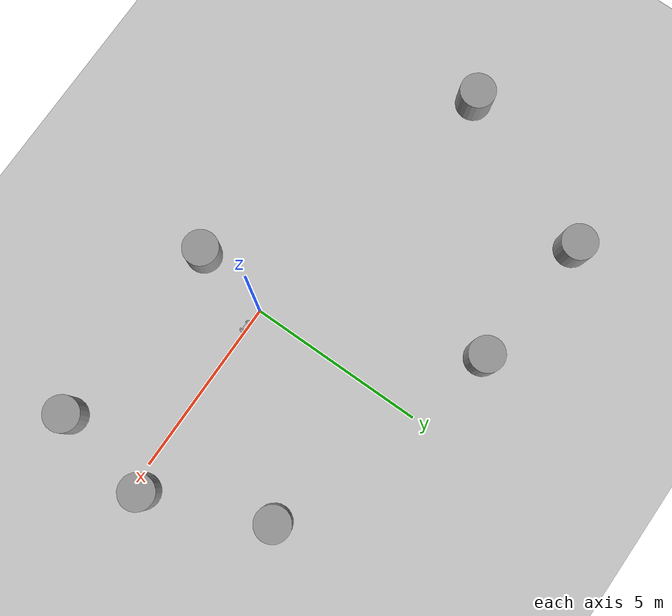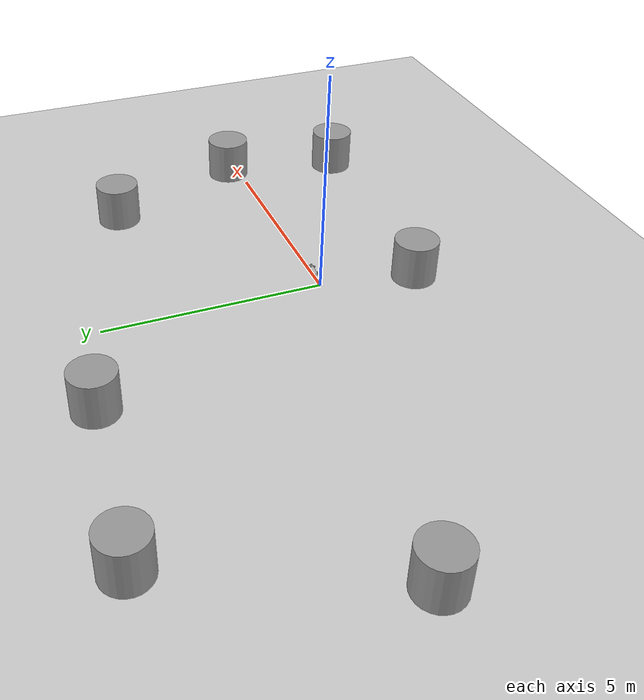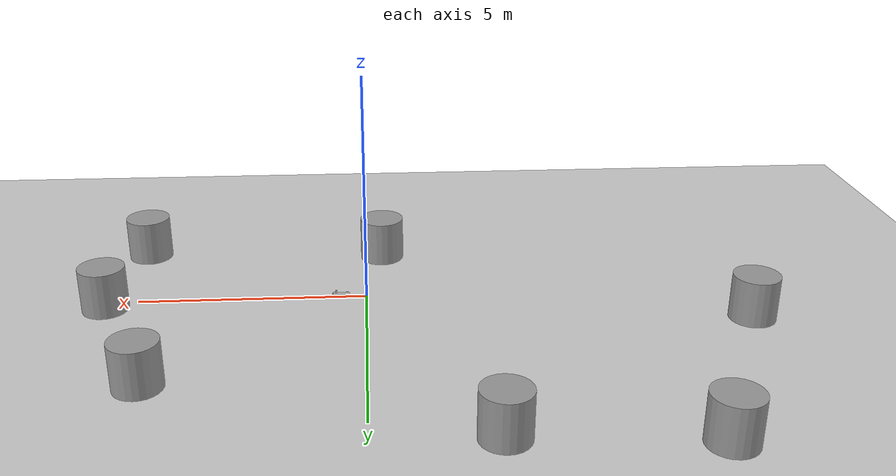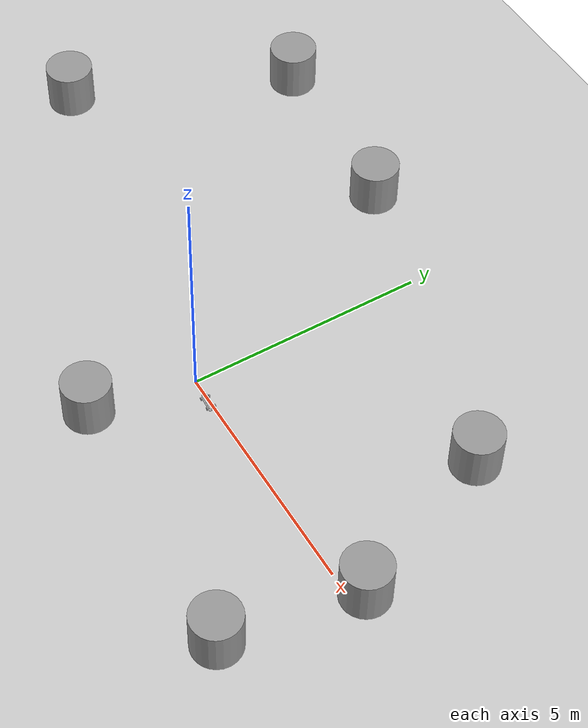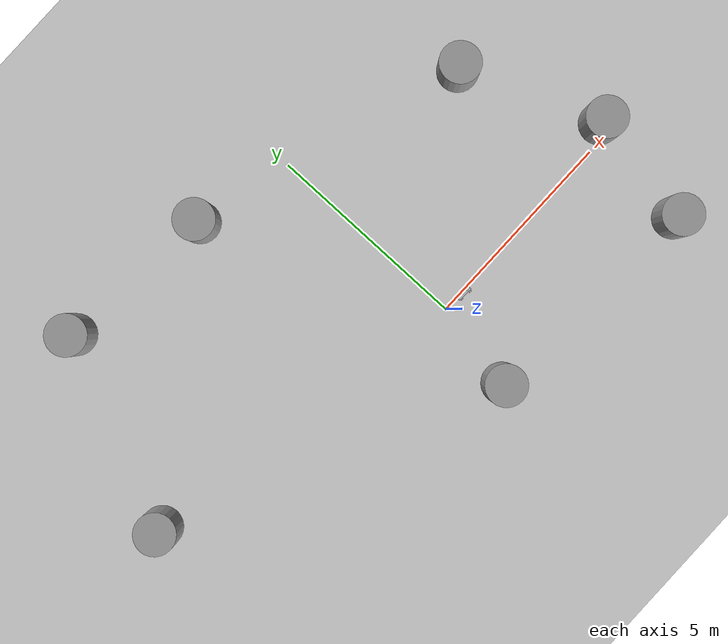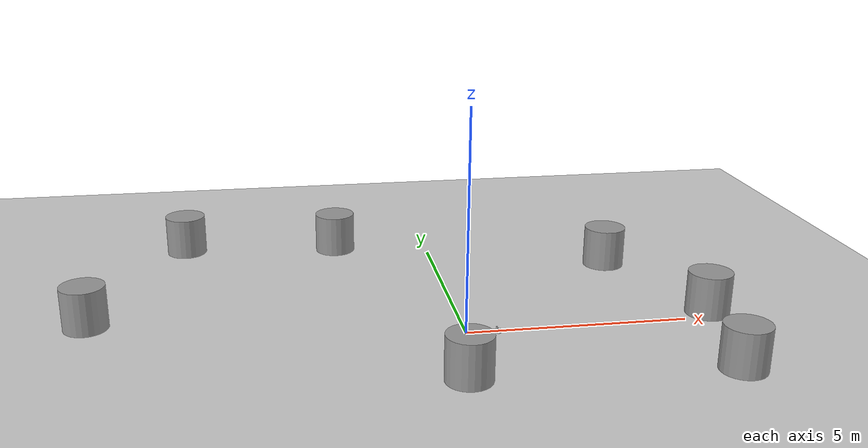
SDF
<sdf version="1.7">
 <world name="monza_world">
  <light name="sun" type="directional">
   <pose>0 0 10 0 -0 0</pose>
   <diffuse>0.8 0.8 0.8 1</diffuse>
   <specular>0.2 0.2 0.2 1</specular>
   <attenuation>
    <range>1000</range>
    <constant>0.9</constant>
    <linear>0.01</linear>
    <quadratic>0.001</quadratic>
   </attenuation>
   <direction>-0.5 0.1 -0.9</direction>
   <spot><inner_angle>0</inner_angle><outer_angle>0</outer_angle><falloff>0</falloff></spot>
  </light>
  <model name="ground_plane">
   <static>1</static>
   <link name="link">
    <collision name="collision">
     <geometry><plane><normal>0 0 1</normal><size>100 100</size></plane></geometry>
     <surface>
      <contact><collide_bitmask>65535</collide_bitmask></contact>
      <friction><ode><mu>100</mu><mu2>50</mu2></ode></friction>
     </surface>
    </collision>
    <visual name="visual">
     <cast_shadows>0</cast_shadows>
     <geometry><plane><normal>0 0 1</normal><size>100 100</size></plane></geometry>
     <material>
      <script><uri>file://media/materials/scripts/gazebo.material</uri><name>Gazebo/Grey</name></script>
     </material>
    </visual>
   </link>
  </model>
  <gravity>0 0 -9.8</gravity>
  <magnetic_field>6e-06 2.3e-05 -4.2e-05</magnetic_field>
  <atmosphere type="adiabatic"/>
  <physics type="ode">
   <max_step_size>0.001</max_step_size>
   <real_time_factor>1</real_time_factor>
   <real_time_update_rate>1000</real_time_update_rate>
  </physics>
  <scene><ambient>0.4 0.4 0.4 1</ambient><background>0.7 0.7 0.7 1</background><shadows>1</shadows></scene>
  <audio><device>default</device></audio>
  <spherical_coordinates>
   <surface_model>EARTH_WGS84</surface_model>
   <latitude_deg>0</latitude_deg>
   <longitude_deg>0</longitude_deg>
   <elevation>0</elevation>
   <heading_deg>0</heading_deg>
  </spherical_coordinates>
  <model name="f1tenth">
   <link name="base_footprint">
    <inertial>
     <pose>0.006338 0 0.038124 0 -0 0</pose>
     <mass>2.13</mass>
     <inertia>
      <ixx>0.00403909</ixx>
      <ixy>0</ixy>
      <ixz>-0.00075082</ixz>
      <iyy>0.027166</iyy>
      <iyz>0</iyz>
      <izz>0.0286469</izz>
     </inertia>
    </inertial>
    <collision name="base_footprint_fixed_joint_lump__base_link_collision">
     <pose>0 0 0.0375 0 -0 0</pose>
     <geometry><box><size>0.38 0.125 0.069</size></box></geometry>
    </collision>
    <collision name="base_footprint_fixed_joint_lump__laser_link_collision_1">
     <pose>0.1 0 0.108 0 -0 0</pose>
     <geometry><cylinder><length>0.07</length><radius>0.019</radius></cylinder></geometry>
    </collision>
    <visual name="base_footprint_fixed_joint_lump__base_link_visual">
     <pose>0 0 0.01 0 -0 0</pose>
     <geometry><box><size>0.38 0.125 0.014</size></box></geometry>
    </visual>
    <visual name="base_footprint_fixed_joint_lump__base_link_visual_1">
     <pose>0 0 0.065 0 -0 0</pose>
     <geometry><box><size>0.38 0.101 0.002</size></box></geometry>
    </visual>
    <visual name="base_footprint_fixed_joint_lump__front_camera_link_visual_2">
     <pose>0.175 0 0.053 0 -0 0</pose>
     <geometry><box><size>0.03 0.03 0.03</size></box></geometry>
    </visual>
    <visual name="base_footprint_fixed_joint_lump__laser_link_visual_3">
     <pose>0.1 0 0.108 0 -0 0</pose>
     <geometry><cylinder><length>0.07</length><radius>0.019</radius></cylinder></geometry>
    </visual>
    <sensor name="rgb_camera" type="camera">
     <always_on>1</always_on>
     <update_rate>30</update_rate>
     <camera>
      <horizontal_fov>1.047</horizontal_fov>
      <image><width>640</width><height>480</height><format>R8G8B8</format></image>
      <clip><near>0.02</near><far>50</far></clip>
     </camera>
     <plugin name="rgb_camera_plugin" filename="libgazebo_ros_camera.so">
      <ros>
       <remapping>~/image_raw:=/camera/rgb/image_raw</remapping>
       <remapping>~/camera_info:=/camera/rgb/camera_info</remapping>
      </ros>
      <frame_name>front_camera_link</frame_name>
     </plugin>
     <pose>0.175 0 0.053 0 -0 0</pose>
    </sensor>
    <sensor name="depth_camera" type="depth">
     <always_on>1</always_on>
     <update_rate>30</update_rate>
     <camera>
      <horizontal_fov>1.047</horizontal_fov>
      <image><width>640</width><height>480</height><format>FLOAT32</format></image>
      <clip><near>0.05</near><far>20</far></clip>
     </camera>
     <plugin name="depth_camera_plugin" filename="libgazebo_ros_depth_camera.so">
      <ros>
       <remapping>~/image_raw:=/camera/depth/image_raw</remapping>
       <remapping>~/camera_info:=/camera/depth/camera_info</remapping>
      </ros>
      <frame_name>front_camera_link</frame_name>
     </plugin>
     <pose>0.175 0 0.053 0 -0 0</pose>
    </sensor>
    <sensor name="imu_sensor" type="imu">
     <always_on>1</always_on>
     <update_rate>100</update_rate>
     <visualize>0</visualize>
     <plugin name="imu_plugin" filename="libgazebo_ros_imu_sensor.so">
      <ros><remapping>~/out:=/imu/data</remapping></ros>
      <frame_name>imu_link</frame_name>
     </plugin>
     <imu>
      <angular_velocity>
       <x>
        <noise type="gaussian">
         <mean>0</mean>
         <stddev>0.001</stddev>
         <bias_mean>0</bias_mean>
         <bias_stddev>0.0002</bias_stddev>
        </noise>
       </x>
       <y>
        <noise type="gaussian">
         <mean>0</mean>
         <stddev>0.001</stddev>
         <bias_mean>0</bias_mean>
         <bias_stddev>0.0002</bias_stddev>
        </noise>
       </y>
       <z>
        <noise type="gaussian">
         <mean>0</mean>
         <stddev>0.001</stddev>
         <bias_mean>0</bias_mean>
         <bias_stddev>0.0002</bias_stddev>
        </noise>
       </z>
      </angular_velocity>
      <linear_acceleration>
       <x>
        <noise type="gaussian">
         <mean>0</mean>
         <stddev>0.1</stddev>
         <bias_mean>0</bias_mean>
         <bias_stddev>0.02</bias_stddev>
        </noise>
       </x>
       <y>
        <noise type="gaussian">
         <mean>0</mean>
         <stddev>0.1</stddev>
         <bias_mean>0</bias_mean>
         <bias_stddev>0.02</bias_stddev>
        </noise>
       </y>
       <z>
        <noise type="gaussian">
         <mean>0</mean>
         <stddev>0.1</stddev>
         <bias_mean>0</bias_mean>
         <bias_stddev>0.02</bias_stddev>
        </noise>
       </z>
      </linear_acceleration>
     </imu>
     <pose>0 0 0.0345 0 -0 0</pose>
    </sensor>
    <sensor name="lidar_sensor" type="ray">
     <always_on>1</always_on>
     <update_rate>20</update_rate>
     <visualize>0</visualize>
     <ray>
      <scan>
       <horizontal>
        <samples>720</samples>
        <resolution>1</resolution>
        <min_angle>-3.14159</min_angle>
        <max_angle>3.14159</max_angle>
       </horizontal>
       <vertical><samples>1</samples><min_angle>0</min_angle><max_angle>0</max_angle></vertical>
      </scan>
      <range><min>0.05</min><max>30</max><resolution>0.01</resolution></range>
      <noise><type>gaussian</type><mean>0</mean><stddev>0.01</stddev></noise>
     </ray>
     <plugin name="gazebo_ros_laser" filename="libgazebo_ros_ray_sensor.so">
      <ros><remapping>~/out:=/scan</remapping></ros>
      <output_type>sensor_msgs/LaserScan</output_type>
      <frame_name>laser_link</frame_name>
     </plugin>
     <pose>0.1 0 0.073 0 -0 0</pose>
    </sensor>
   </link>
   <joint name="joint_steer_front_left" type="revolute">
    <pose relative_to="base_footprint">0.13 0.0835 0.034 0 -0 0</pose>
    <parent>base_footprint</parent>
    <child>steer_front_left_link</child>
    <axis>
     <xyz>0 0 1</xyz>
     <limit><lower>-0.7</lower><upper>0.7</upper><effort>5</effort><velocity>2</velocity></limit>
     <dynamics><spring_reference>0</spring_reference><spring_stiffness>0</spring_stiffness></dynamics>
    </axis>
   </joint>
   <link name="steer_front_left_link">
    <pose relative_to="joint_steer_front_left">0 0 0 0 -0 0</pose>
    <inertial>
     <mass>0.02</mass>
     <inertia><ixx>0.0001</ixx><ixy>0</ixy><ixz>0</ixz><iyy>0.0001</iyy><iyz>0</iyz><izz>0.0001</izz></inertia>
    </inertial>
   </link>
   <joint name="joint_wheel_front_left" type="revolute">
    <pose relative_to="steer_front_left_link">0 0 0 0 -0 0</pose>
    <parent>steer_front_left_link</parent>
    <child>wheel_front_left</child>
    <axis>
     <xyz>0 1 0</xyz>
     <limit><lower>-1e+16</lower><upper>1e+16</upper></limit>
     <dynamics><spring_reference>0</spring_reference><spring_stiffness>0</spring_stiffness></dynamics>
    </axis>
   </joint>
   <link name="wheel_front_left">
    <pose relative_to="joint_wheel_front_left">0 0 0 0 -0 0</pose>
    <inertial>
     <mass>0.05</mass>
     <inertia><ixx>0.0001</ixx><ixy>0</ixy><ixz>0</ixz><iyy>0.0001</iyy><iyz>0</iyz><izz>0.0001</izz></inertia>
    </inertial>
    <collision name="wheel_front_left_collision">
     <pose>0 0 0 1.5708 -0 0</pose>
     <geometry><cylinder><length>0.023</length><radius>0.034</radius></cylinder></geometry>
    </collision>
    <visual name="wheel_front_left_visual">
     <pose>0 0 0 1.5708 -0 0</pose>
     <geometry><cylinder><length>0.023</length><radius>0.034</radius></cylinder></geometry>
    </visual>
   </link>
   <joint name="joint_steer_front_right" type="revolute">
    <pose relative_to="base_footprint">0.13 -0.0835 0.034 0 -0 0</pose>
    <parent>base_footprint</parent>
    <child>steer_front_right_link</child>
    <axis>
     <xyz>0 0 1</xyz>
     <limit><lower>-0.7</lower><upper>0.7</upper><effort>5</effort><velocity>2</velocity></limit>
     <dynamics><spring_reference>0</spring_reference><spring_stiffness>0</spring_stiffness></dynamics>
    </axis>
   </joint>
   <link name="steer_front_right_link">
    <pose relative_to="joint_steer_front_right">0 0 0 0 -0 0</pose>
    <inertial>
     <mass>0.02</mass>
     <inertia><ixx>0.0001</ixx><ixy>0</ixy><ixz>0</ixz><iyy>0.0001</iyy><iyz>0</iyz><izz>0.0001</izz></inertia>
    </inertial>
   </link>
   <joint name="joint_wheel_front_right" type="revolute">
    <pose relative_to="steer_front_right_link">0 0 0 0 -0 0</pose>
    <parent>steer_front_right_link</parent>
    <child>wheel_front_right</child>
    <axis>
     <xyz>0 1 0</xyz>
     <limit><lower>-1e+16</lower><upper>1e+16</upper></limit>
     <dynamics><spring_reference>0</spring_reference><spring_stiffness>0</spring_stiffness></dynamics>
    </axis>
   </joint>
   <link name="wheel_front_right">
    <pose relative_to="joint_wheel_front_right">0 0 0 0 -0 0</pose>
    <inertial>
     <mass>0.05</mass>
     <inertia><ixx>0.0001</ixx><ixy>0</ixy><ixz>0</ixz><iyy>0.0001</iyy><iyz>0</iyz><izz>0.0001</izz></inertia>
    </inertial>
    <collision name="wheel_front_right_collision">
     <pose>0 0 0 1.5708 -0 0</pose>
     <geometry><cylinder><length>0.023</length><radius>0.034</radius></cylinder></geometry>
    </collision>
    <visual name="wheel_front_right_visual">
     <pose>0 0 0 1.5708 -0 0</pose>
     <geometry><cylinder><length>0.023</length><radius>0.034</radius></cylinder></geometry>
    </visual>
   </link>
   <joint name="joint_wheel_rear_left" type="revolute">
    <pose relative_to="base_footprint">-0.13 0.0835 0.034 0 -0 0</pose>
    <parent>base_footprint</parent>
    <child>wheel_rear_left</child>
    <axis>
     <xyz>0 1 0</xyz>
     <limit><lower>-1e+16</lower><upper>1e+16</upper></limit>
     <dynamics><spring_reference>0</spring_reference><spring_stiffness>0</spring_stiffness></dynamics>
    </axis>
   </joint>
   <link name="wheel_rear_left">
    <pose relative_to="joint_wheel_rear_left">0 0 0 0 -0 0</pose>
    <inertial>
     <mass>0.05</mass>
     <inertia><ixx>0.0001</ixx><ixy>0</ixy><ixz>0</ixz><iyy>0.0001</iyy><iyz>0</iyz><izz>0.0001</izz></inertia>
    </inertial>
    <collision name="wheel_rear_left_collision">
     <pose>0 0 0 1.5708 -0 0</pose>
     <geometry><cylinder><length>0.023</length><radius>0.034</radius></cylinder></geometry>
    </collision>
    <visual name="wheel_rear_left_visual">
     <pose>0 0 0 1.5708 -0 0</pose>
     <geometry><cylinder><length>0.023</length><radius>0.034</radius></cylinder></geometry>
    </visual>
   </link>
   <joint name="joint_wheel_rear_right" type="revolute">
    <pose relative_to="base_footprint">-0.13 -0.0835 0.034 0 -0 0</pose>
    <parent>base_footprint</parent>
    <child>wheel_rear_right</child>
    <axis>
     <xyz>0 1 0</xyz>
     <limit><lower>-1e+16</lower><upper>1e+16</upper></limit>
     <dynamics><spring_reference>0</spring_reference><spring_stiffness>0</spring_stiffness></dynamics>
    </axis>
   </joint>
   <link name="wheel_rear_right">
    <pose relative_to="joint_wheel_rear_right">0 0 0 0 -0 0</pose>
    <inertial>
     <mass>0.05</mass>
     <inertia><ixx>0.0001</ixx><ixy>0</ixy><ixz>0</ixz><iyy>0.0001</iyy><iyz>0</iyz><izz>0.0001</izz></inertia>
    </inertial>
    <collision name="wheel_rear_right_collision">
     <pose>0 0 0 1.5708 -0 0</pose>
     <geometry><cylinder><length>0.023</length><radius>0.034</radius></cylinder></geometry>
    </collision>
    <visual name="wheel_rear_right_visual">
     <pose>0 0 0 1.5708 -0 0</pose>
     <geometry><cylinder><length>0.023</length><radius>0.034</radius></cylinder></geometry>
    </visual>
   </link>
   <static>0</static>
   <plugin name="f1tenth_ackermann" filename="libgazebo_ros_ackermann_drive.so">
    <ros><remapping>cmd_vel:=/cmd_vel</remapping><remapping>odom:=/odom</remapping></ros>
    <update_rate>100.0</update_rate>
    <front_left_joint>joint_wheel_front_left</front_left_joint>
    <front_right_joint>joint_wheel_front_right</front_right_joint>
    <rear_left_joint>joint_wheel_rear_left</rear_left_joint>
    <rear_right_joint>joint_wheel_rear_right</rear_right_joint>
    <left_steering_joint>joint_steer_front_left</left_steering_joint>
    <right_steering_joint>joint_steer_front_right</right_steering_joint>
    <max_steer>0.698</max_steer>
    <max_speed>2.0</max_speed>
    <publish_odom>1</publish_odom>
    <publish_odom_tf>1</publish_odom_tf>
    <odometry_frame>odom</odometry_frame>
    <robot_base_frame>base_footprint</robot_base_frame>
   </plugin>
   <pose>0.56873 -0.047917 -8e-06 -6.2e-05 1.8e-05 -0.063437</pose>
  </model>
  <model name="unit_cylinder">
   <pose>4.31111 3.56406 0.499993 -5e-06 -5e-06 -3e-06</pose>
   <link name="link">
    <inertial>
     <mass>1</mass>
     <inertia><ixx>0.145833</ixx><ixy>0</ixy><ixz>0</ixz><iyy>0.145833</iyy><iyz>0</iyz><izz>0.125</izz></inertia>
    </inertial>
    <collision name="collision">
     <geometry><cylinder><radius>0.5</radius><length>1</length></cylinder></geometry>
    </collision>
    <visual name="visual">
     <geometry><cylinder><radius>0.5</radius><length>1</length></cylinder></geometry>
     <material>
      <script><name>Gazebo/Grey</name><uri>file://media/materials/scripts/gazebo.material</uri></script>
     </material>
    </visual>
   </link>
  </model>
  <model name="unit_cylinder_0">
   <pose>-6.25577 5.9722 0.499993 -5e-06 -5e-06 -3e-06</pose>
   <link name="link">
    <inertial>
     <mass>1</mass>
     <inertia><ixx>0.145833</ixx><ixy>0</ixy><ixz>0</ixz><iyy>0.145833</iyy><iyz>0</iyz><izz>0.125</izz></inertia>
    </inertial>
    <collision name="collision">
     <geometry><cylinder><radius>0.5</radius><length>1</length></cylinder></geometry>
    </collision>
    <visual name="visual">
     <geometry><cylinder><radius>0.5</radius><length>1</length></cylinder></geometry>
     <material>
      <script><name>Gazebo/Grey</name><uri>file://media/materials/scripts/gazebo.material</uri></script>
     </material>
    </visual>
   </link>
  </model>
  <model name="unit_cylinder_1">
   <pose>-8.19951 1.46083 0.499998 5e-06 5e-06 -3e-06</pose>
   <link name="link">
    <inertial>
     <mass>1</mass>
     <inertia><ixx>0.145833</ixx><ixy>0</ixy><ixz>0</ixz><iyy>0.145833</iyy><iyz>0</iyz><izz>0.125</izz></inertia>
    </inertial>
    <collision name="collision">
     <geometry><cylinder><radius>0.5</radius><length>1</length></cylinder></geometry>
    </collision>
    <visual name="visual">
     <geometry><cylinder><radius>0.5</radius><length>1</length></cylinder></geometry>
     <material>
      <script><name>Gazebo/Grey</name><uri>file://media/materials/scripts/gazebo.material</uri></script>
     </material>
    </visual>
   </link>
  </model>
  <model name="unit_cylinder_2">
   <pose>5.16585 -2.47283 0.499998 5e-06 5e-06 -2e-06</pose>
   <link name="link">
    <inertial>
     <mass>1</mass>
     <inertia><ixx>0.145833</ixx><ixy>0</ixy><ixz>0</ixz><iyy>0.145833</iyy><iyz>0</iyz><izz>0.125</izz></inertia>
    </inertial>
    <collision name="collision">
     <geometry><cylinder><radius>0.5</radius><length>1</length></cylinder></geometry>
    </collision>
    <visual name="visual">
     <geometry><cylinder><radius>0.5</radius><length>1</length></cylinder></geometry>
     <material>
      <script><name>Gazebo/Grey</name><uri>file://media/materials/scripts/gazebo.material</uri></script>
     </material>
    </visual>
   </link>
  </model>
  <model name="unit_cylinder_3">
   <pose>-0.383186 -2.12391 0.499998 5e-06 5e-06 -2e-06</pose>
   <link name="link">
    <inertial>
     <mass>1</mass>
     <inertia><ixx>0.145833</ixx><ixy>0</ixy><ixz>0</ixz><iyy>0.145833</iyy><iyz>0</iyz><izz>0.125</izz></inertia>
    </inertial>
    <collision name="collision">
     <geometry><cylinder><radius>0.5</radius><length>1</length></cylinder></geometry>
    </collision>
    <visual name="visual">
     <geometry><cylinder><radius>0.5</radius><length>1</length></cylinder></geometry>
     <material>
      <script><name>Gazebo/Grey</name><uri>file://media/materials/scripts/gazebo.material</uri></script>
     </material>
    </visual>
   </link>
  </model>
  <model name="unit_cylinder_4">
   <pose>-2.37732 5.61299 0.499998 5e-06 5e-06 -1e-06</pose>
   <link name="link">
    <inertial>
     <mass>1</mass>
     <inertia><ixx>0.145833</ixx><ixy>0</ixy><ixz>0</ixz><iyy>0.145833</iyy><iyz>0</iyz><izz>0.125</izz></inertia>
    </inertial>
    <collision name="collision">
     <geometry><cylinder><radius>0.5</radius><length>1</length></cylinder></geometry>
    </collision>
    <visual name="visual">
     <geometry><cylinder><radius>0.5</radius><length>1</length></cylinder></geometry>
     <material>
      <script><name>Gazebo/Grey</name><uri>file://media/materials/scripts/gazebo.material</uri></script>
     </material>
    </visual>
   </link>
  </model>
  <model name="unit_cylinder_5">
   <pose>5.64418 0.281799 0.499998 5e-06 5e-06 0</pose>
   <link name="link">
    <inertial>
     <mass>1</mass>
     <inertia><ixx>0.145833</ixx><ixy>0</ixy><ixz>0</ixz><iyy>0.145833</iyy><iyz>0</iyz><izz>0.125</izz></inertia>
    </inertial>
    <collision name="collision">
     <geometry><cylinder><radius>0.5</radius><length>1</length></cylinder></geometry>
    </collision>
    <visual name="visual">
     <geometry><cylinder><radius>0.5</radius><length>1</length></cylinder></geometry>
     <material>
      <script><name>Gazebo/Grey</name><uri>file://media/materials/scripts/gazebo.material</uri></script>
     </material>
    </visual>
   </link>
  </model>
 </world>
</sdf>
